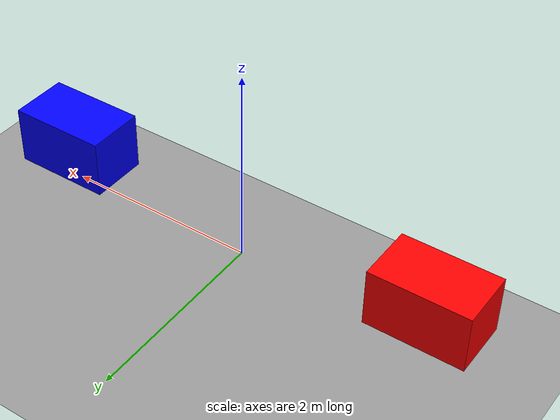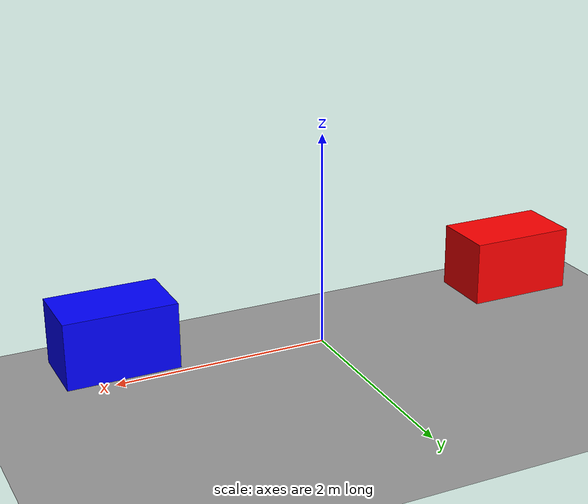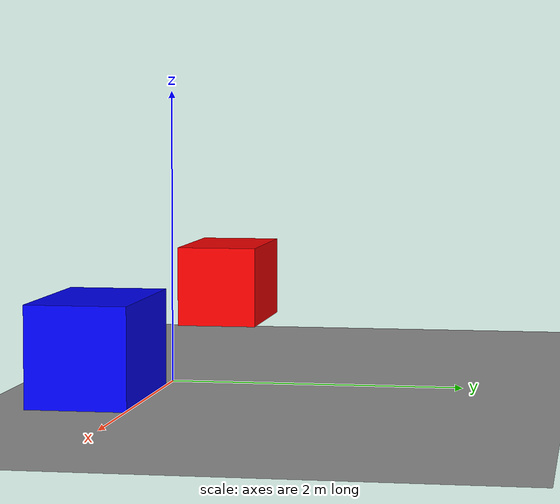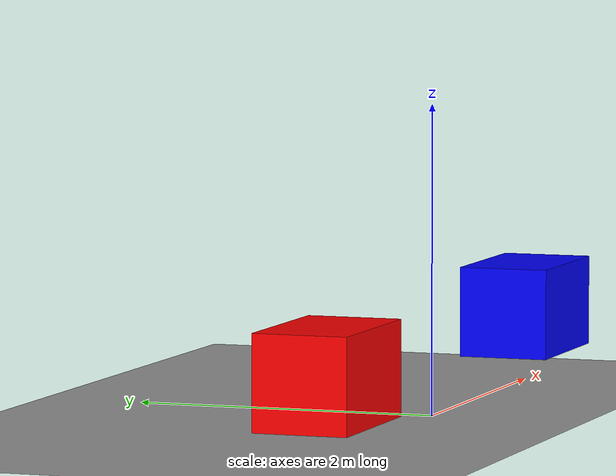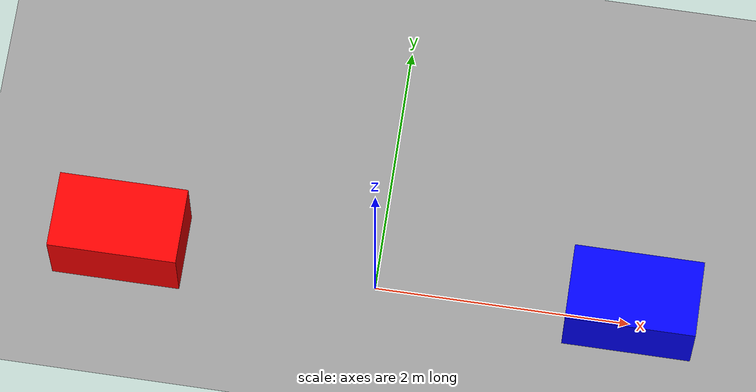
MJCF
<mujoco>
  <option gravity="0 0 -9.81" />
  <worldbody>
    <body name="object_3" pos="0 0 0">
      <geom type="plane" size="30 30 0.1" rgba="0.6 0.6 0.6 1" />
    </body>
    <body name="object_1" pos="-2 0 0.5">
      <geom type="box" size="0.5 0.3 0.3" mass="10" rgba="1 0 0 1" />
      <joint type="slide" axis="1 0 0" name="object_1_joint" />
    </body>
    <body name="object_2" pos="2 0 0.5">
      <geom type="box" size="0.5 0.3 0.3" mass="2" rgba="0 0 1 1" />
      <joint type="slide" axis="1 0 0" name="object_2_joint" />
    </body>
    <body name="object_4" pos="0 0 2" />
  </worldbody>
</mujoco>
